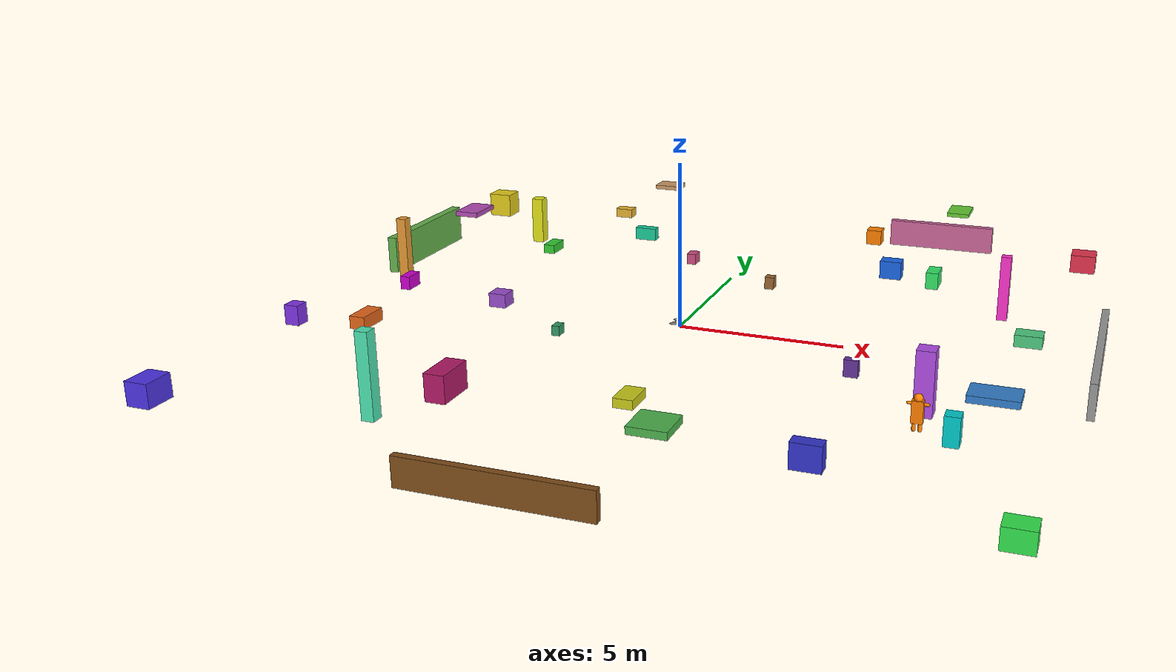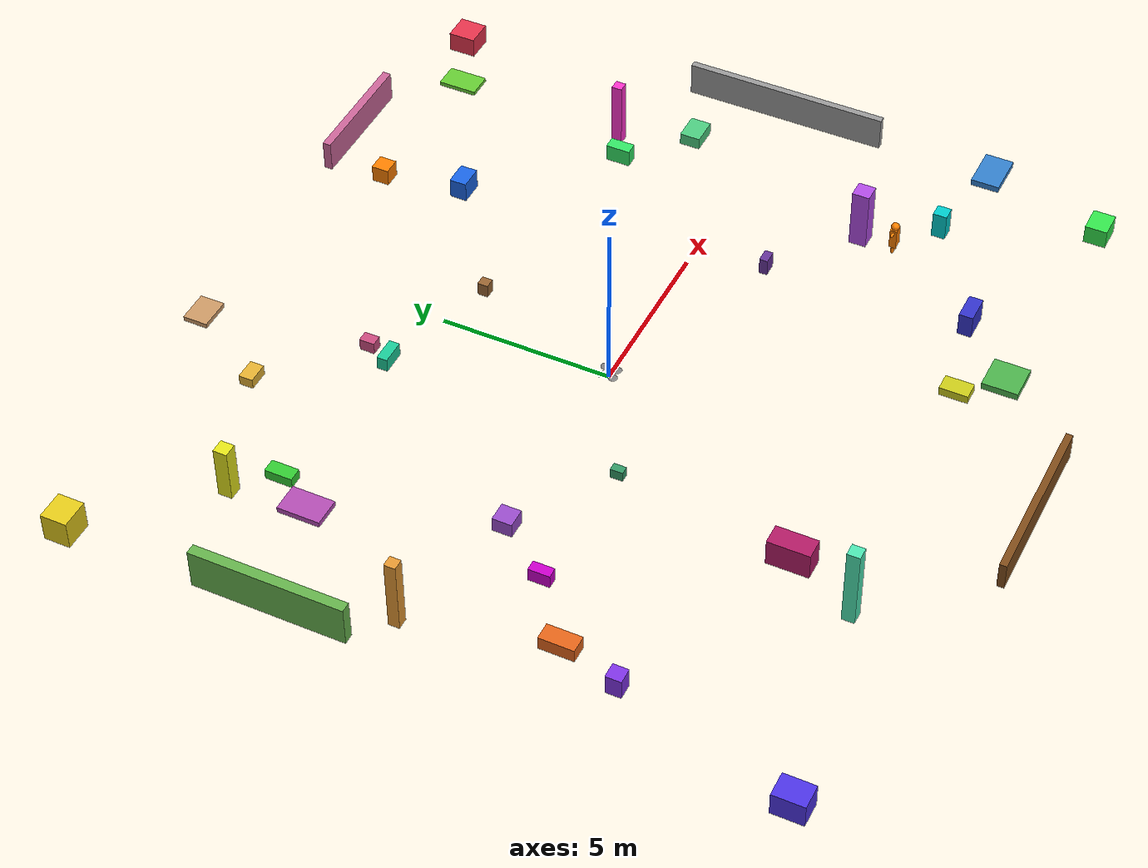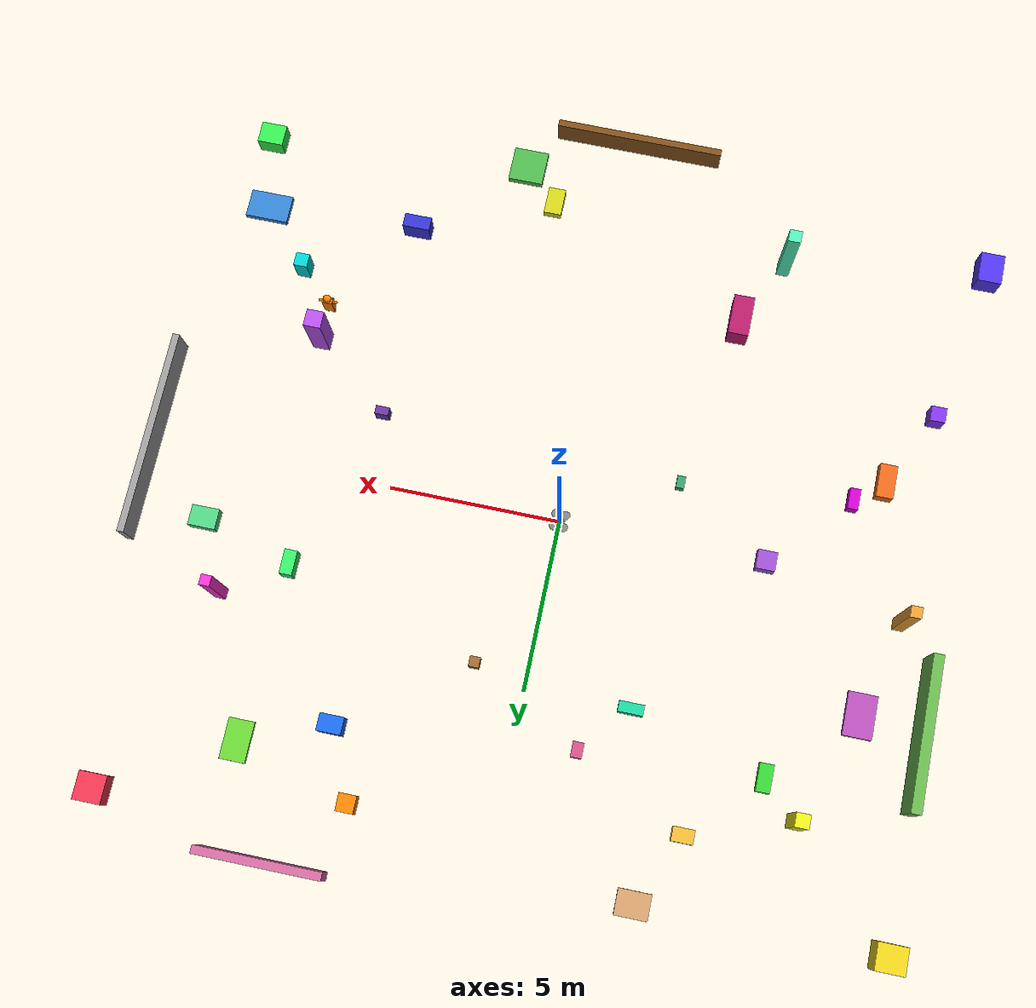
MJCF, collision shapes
<mujoco model="Skydio X2">
  <compiler autolimits="true" meshdir="assets" texturedir="assets"/>

  <option timestep="0.01" density="1.225" viscosity="1.8e-5"/>

  <default>
    <default class="x2">
      <geom mass="0"/>
      <motor ctrlrange="0 13"/>
      <mesh scale="0.01 0.01 0.01"/>
      <default class="visual">
        <geom group="2" type="mesh" contype="0" conaffinity="0"/>
      </default>
      <default class="collision">
        <geom group="3" type="box"/>
        <default class="rotor">
          <geom type="ellipsoid" size=".13 .13 .01"/>
        </default>
      </default>
      <site group="5"/>
    </default>
    <default class="tung">
      <mesh scale="1 1 1"/>
      <geom type="mesh" group="2" contype="0" conaffinity="0"/>
    </default>
  </default>

  <asset>
    <texture name="X2_lowpoly_texture_SpinningProps_1024" type="2d" file="X2_lowpoly_texture_SpinningProps_1024.png"/>
    <material name="phong3SG" texture="X2_lowpoly_texture_SpinningProps_1024"/>
    <material name="invisible" rgba="0 0 0 0"/>
    <material name="orange" rgba="1.0 0.5 0.0 1" specular="0.5" shininess="0.5"/>

    <mesh name="X2_lowpoly" class="x2" file="X2_lowpoly.obj"/>
  </asset>

  <worldbody>
    <body name="x2" pos="0 0 0.1" childclass="x2">
      <freejoint/>
      <camera name="track" pos="-1 0 .5" xyaxes="0 -1 0 1 0 2" mode="trackcom"/>
      <site name="imu" pos="0 0 .02"/>
      <geom material="phong3SG" mesh="X2_lowpoly" class="visual" quat="0 0 1 1"/>
      <geom class="collision" size=".06 .027 .02" pos=".04 0 .02"/>
      <geom class="collision" size=".06 .027 .02" pos=".04 0 .06"/>
      <geom class="collision" size=".05 .027 .02" pos="-.07 0 .065"/>
      <geom class="collision" size=".023 .017 .01" pos="-.137 .008 .065" quat="1 0 0 1"/>
      <geom name="rotor1" class="rotor" pos="-.14 -.18 .05" mass=".25"/>
      <geom name="rotor2" class="rotor" pos="-.14 .18 .05" mass=".25"/>
      <geom name="rotor3" class="rotor" pos=".14 .18 .08" mass=".25"/>
      <geom name="rotor4" class="rotor" pos=".14 -.18 .08" mass=".25"/>
      <geom size=".16 .04 .02" pos="0 0 0.02" type="ellipsoid" mass=".325" class="visual" material="invisible"/>
      <site name="thrust1" pos="-.14 -.18 .05"/>
      <site name="thrust2" pos="-.14 .18 .05"/>
      <site name="thrust3" pos=".14 .18 .08"/>
      <site name="thrust4" pos=".14 -.18 .08"/>
    </body>

    <!-- Ground obstacles -->
    <!-- Tung approximation with primitives -->
    <body name="tung_model" pos="8 -5 0.5">
      <!-- Body -->
      <geom type="box" size="0.15 0.1 0.3" material="orange" mass="5"/>
      <!-- Head -->
      <geom type="sphere" size="0.12" pos="0 0 0.35" material="orange" mass="2"/>
      <!-- Arms -->
      <geom type="capsule" size="0.04 0.15" fromto="-0.25 0 0.2 0.25 0 0.2" material="orange" mass="1"/>
      <!-- Legs -->
      <geom type="capsule" size="0.05 0.2" fromto="-0.08 0 -0.3 -0.08 0 -0.5" material="orange" mass="1"/>
      <geom type="capsule" size="0.05 0.2" fromto="0.08 0 -0.3 0.08 0 -0.5" material="orange" mass="1"/>
    </body>
    <body name="ground_box2" pos="-7 6 0.15">
      <geom type="box" size="0.2 0.4 0.15" rgba="0.2 0.8 0.2 1" mass="8"/>
    </body>
    <body name="ground_box3" pos="6 -8 0.35">
      <geom type="box" size="0.4 0.2 0.35" rgba="0.2 0.2 0.8 1" mass="12"/>
    </body>
    <body name="ground_box4" pos="-9 -3 0.2">
      <geom type="box" size="0.25 0.5 0.2" rgba="0.9 0.4 0.1 1" mass="9"/>
    </body>
    <body name="ground_box5" pos="5 7 0.3">
      <geom type="box" size="0.35 0.25 0.3" rgba="0.1 0.4 0.9 1" mass="11"/>
    </body>
    <body name="ground_box6" pos="-4 -7 0.4">
      <geom type="box" size="0.3 0.6 0.4" rgba="0.7 0.1 0.4 1" mass="14"/>
    </body>
    <body name="ground_box7" pos="10 2 0.18">
      <geom type="box" size="0.4 0.3 0.18" rgba="0.3 0.8 0.5 1" mass="7"/>
    </body>
    <body name="ground_box8" pos="-6 0 0.22">
      <geom type="box" size="0.28 0.28 0.22" rgba="0.6 0.3 0.8 1" mass="8"/>
    </body>

    <!-- Mid-air obstacles -->
    <body name="air_box1" pos="4 9 0.8">
      <geom type="box" size="0.25 0.25 0.25" rgba="1 0.5 0 1" mass="5"/>
    </body>
    <body name="air_box2" pos="-8 -2 1.2">
      <geom type="box" size="0.15 0.3 0.2" rgba="0.8 0 0.8 1" mass="4"/>
    </body>
    <body name="air_box3" pos="9 -6 0.6">
      <geom type="box" size="0.2 0.2 0.4" rgba="0 0.8 0.8 1" mass="6"/>
    </body>
    <body name="air_box4" pos="-5 8 1.1">
      <geom type="box" size="0.3 0.2 0.15" rgba="0.9 0.7 0.2 1" mass="3"/>
    </body>
    <body name="air_box5" pos="7 3 1.4">
      <geom type="box" size="0.18 0.35 0.25" rgba="0.2 0.9 0.4 1" mass="5"/>
    </body>
    <body name="air_box6" pos="-10 -5 0.9">
      <geom type="box" size="0.22 0.22 0.3" rgba="0.5 0.2 0.9 1" mass="4"/>
    </body>
    <body name="air_box7" pos="2 -9 1.6">
      <geom type="box" size="0.25 0.4 0.12" rgba="0.8 0.8 0.1 1" mass="4"/>
    </body>
    <body name="air_box8" pos="-3 5 1.3">
      <geom type="box" size="0.35 0.15 0.2" rgba="0.1 0.8 0.6 1" mass="3"/>
    </body>

    <!-- Wall-like obstacles -->
    <body name="wall1" pos="12 0 0.5">
      <geom type="box" size="0.1 3 0.5" rgba="0.6 0.6 0.6 1" mass="20"/>
    </body>
    <body name="wall2" pos="0 -12 0.4">
      <geom type="box" size="2.5 0.1 0.4" rgba="0.5 0.3 0.1 1" mass="15"/>
    </body>
    <body name="wall3" pos="-11 4 0.6">
      <geom type="box" size="0.15 2.2 0.6" rgba="0.4 0.7 0.3 1" mass="18"/>
    </body>
    <body name="wall4" pos="6 11 0.45">
      <geom type="box" size="1.8 0.12 0.45" rgba="0.8 0.4 0.6 1" mass="16"/>
    </body>

    <!-- Tall tower obstacles -->
    <body name="tower1" pos="-8 7 0.8">
      <geom type="box" size="0.2 0.2 0.8" rgba="0.9 0.9 0.1 1" mass="8"/>
    </body>
    <body name="tower2" pos="9 4 1.0">
      <geom type="box" size="0.15 0.15 1.0" rgba="1 0.2 0.8 1" mass="6"/>
    </body>
    <body name="tower3" pos="-5 -9 1.2">
      <geom type="box" size="0.18 0.18 1.2" rgba="0.3 0.9 0.7 1" mass="10"/>
    </body>
    <body name="tower4" pos="8 -4 0.9">
      <geom type="box" size="0.25 0.25 0.9" rgba="0.7 0.3 0.9 1" mass="9"/>
    </body>
    <body name="tower5" pos="-10 1 1.1">
      <geom type="box" size="0.16 0.16 1.1" rgba="0.9 0.6 0.2 1" mass="7"/>
    </body>

    <!-- Floating platform obstacles -->
    <body name="platform1" pos="3 -10 1.5">
      <geom type="box" size="0.5 0.5 0.1" rgba="0.3 0.7 0.3 1" mass="10"/>
    </body>
    <body name="platform2" pos="-9 4 1.8">
      <geom type="box" size="0.4 0.6 0.08" rgba="0.7 0.3 0.7 1" mass="8"/>
    </body>
    <body name="platform3" pos="10 -7 2.0">
      <geom type="box" size="0.6 0.4 0.09" rgba="0.2 0.5 0.8 1" mass="9"/>
    </body>
    <body name="platform4" pos="-4 10 1.7">
      <geom type="box" size="0.45 0.35 0.07" rgba="0.8 0.6 0.4 1" mass="7"/>
    </body>
    <body name="platform5" pos="7 8 2.2">
      <geom type="box" size="0.35 0.55 0.06" rgba="0.4 0.8 0.2 1" mass="6"/>
    </body>

    <!-- Corner obstacles -->
    <body name="corner1" pos="11 10 0.3">
      <geom type="box" size="0.4 0.4 0.3" rgba="0.9 0.2 0.3 1" mass="12"/>
    </body>
    <body name="corner2" pos="-11 -10 0.35">
      <geom type="box" size="0.35 0.45 0.35" rgba="0.3 0.2 0.9 1" mass="13"/>
    </body>
    <body name="corner3" pos="11 -10 0.28">
      <geom type="box" size="0.38 0.32 0.28" rgba="0.2 0.9 0.3 1" mass="11"/>
    </body>
    <body name="corner4" pos="-11 10 0.42">
      <geom type="box" size="0.42 0.38 0.42" rgba="0.9 0.8 0.1 1" mass="15"/>
    </body>

    <!-- Random scattered obstacles -->
    <body name="scatter1" pos="1.5 4.5 0.2">
      <geom type="box" size="0.15 0.15 0.2" rgba="0.6 0.4 0.2 1" mass="2"/>
    </body>
    <body name="scatter2" pos="-3.2 -1.8 0.15">
      <geom type="box" size="0.12 0.18 0.15" rgba="0.2 0.6 0.4 1" mass="1.5"/>
    </body>
    <body name="scatter3" pos="5.7 -2.1 0.25">
      <geom type="box" size="0.2 0.12 0.25" rgba="0.4 0.2 0.6 1" mass="2.5"/>
    </body>
    <body name="scatter4" pos="-1.8 6.3 0.18">
      <geom type="box" size="0.16 0.22 0.18" rgba="0.8 0.3 0.5 1" mass="2"/>
    </body>
  </worldbody>

  <actuator>
    <motor class="x2" name="thrust1" site="thrust1" gear="0 0 1 0 0 -.0201"/>
    <motor class="x2" name="thrust2" site="thrust2" gear="0 0 1 0 0  .0201"/>
    <motor class="x2" name="thrust3" site="thrust3" gear="0 0 1 0 0  .0201"/>
    <motor class="x2" name="thrust4" site="thrust4" gear="0 0 1 0 0 -.0201"/>
  </actuator>

  <sensor>
    <gyro name="body_gyro" site="imu"/>
    <accelerometer name="body_linacc" site="imu"/>
    <framequat name="body_quat" objtype="site" objname="imu"/>
  </sensor>

  <keyframe>
    <key name="hover" qpos="0 0 .3 1 0 0 0" ctrl="3.2495625 3.2495625 3.2495625 3.2495625"/>
  </keyframe>
</mujoco>
